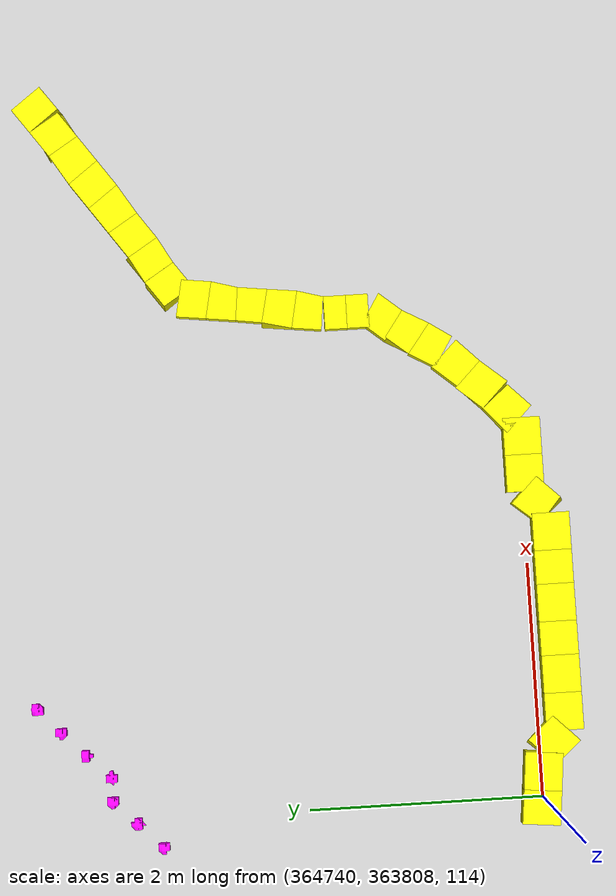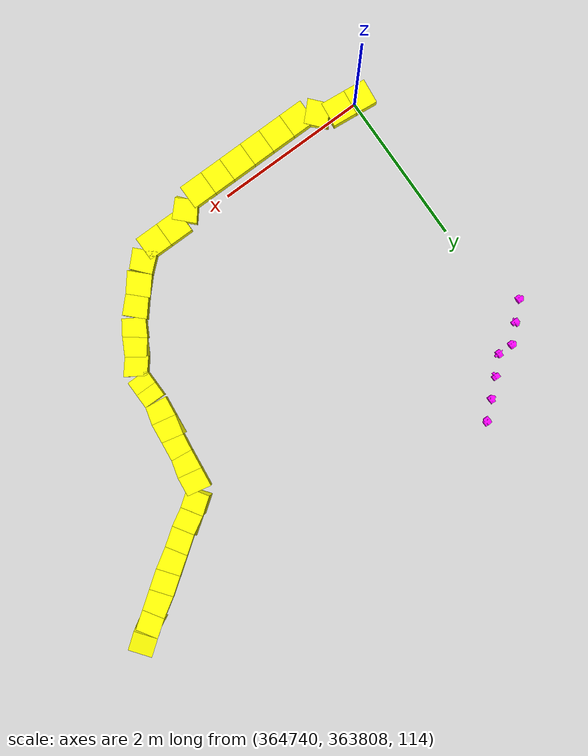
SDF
<sdf version="1.5">
 <world name="default">
  <include><uri>model://sun</uri></include>
  <model name="road_segment_314">
   <static>true</static>
   <pose>364740.0 363808.07999999996 114.42 0 -0.0 -0.09065988721863681</pose>
   <link name="link">
    <collision name="collision">
     <geometry><box><size>0.29454296046036466 0.3 0.12</size></box></geometry>
     <surface><friction><ode><mu>0.02</mu><mu2>0.02</mu2></ode></friction></surface>
    </collision>
    <visual name="visual">
     <geometry><box><size>0.29454296046036466 0.3 0.12</size></box></geometry>
     <material><ambient>1 1 0 1</ambient><diffuse>1 1 0 1</diffuse><emissive>1 1 0 1</emissive></material>
    </visual>
   </link>
  </model>
  <model name="road_segment_315">
   <static>true</static>
   <pose>364740.29333333333 363808.05333333334 114.42000000032742 0 -2.223228096346328e-09 -0.09065988721863681</pose>
   <link name="link">
    <collision name="collision">
     <geometry><box><size>0.29454296046036466 0.3 0.12</size></box></geometry>
     <surface><friction><ode><mu>0.02</mu><mu2>0.02</mu2></ode></friction></surface>
    </collision>
    <visual name="visual">
     <geometry><box><size>0.29454296046036466 0.3 0.12</size></box></geometry>
     <material><ambient>1 1 0 1</ambient><diffuse>1 1 0 1</diffuse><emissive>1 1 0 1</emissive></material>
    </visual>
   </link>
  </model>
  <model name="road_segment_316">
   <static>true</static>
   <pose>364740.54000000004 363807.94 114.41500000080764 0 0.03534061763076632 -0.7853981632519291</pose>
   <link name="link">
    <collision name="collision">
     <geometry><box><size>0.2830194339262208 0.3 0.12</size></box></geometry>
     <surface><friction><ode><mu>0.02</mu><mu2>0.02</mu2></ode></friction></surface>
    </collision>
    <visual name="visual">
     <geometry><box><size>0.2830194339262208 0.3 0.12</size></box></geometry>
     <material><ambient>1 1 0 1</ambient><diffuse>1 1 0 1</diffuse><emissive>1 1 0 1</emissive></material>
    </visual>
   </link>
  </model>
  <model name="road_segment_317">
   <static>true</static>
   <pose>364740.79000000004 363807.84 114.41000000048021 0 3.2014213503649388e-09 0.0</pose>
   <link name="link">
    <collision name="collision">
     <geometry><box><size>0.29999999998835847 0.3 0.12</size></box></geometry>
     <surface><friction><ode><mu>0.02</mu><mu2>0.02</mu2></ode></friction></surface>
    </collision>
    <visual name="visual">
     <geometry><box><size>0.29999999998835847 0.3 0.12</size></box></geometry>
     <material><ambient>1 1 0 1</ambient><diffuse>1 1 0 1</diffuse><emissive>1 1 0 1</emissive></material>
    </visual>
   </link>
  </model>
  <model name="road_segment_318">
   <static>true</static>
   <pose>364741.08999999997 363807.84 114.41 0 -0.0 0.0</pose>
   <link name="link">
    <collision name="collision">
     <geometry><box><size>0.29999999998835847 0.3 0.12</size></box></geometry>
     <surface><friction><ode><mu>0.02</mu><mu2>0.02</mu2></ode></friction></surface>
    </collision>
    <visual name="visual">
     <geometry><box><size>0.29999999998835847 0.3 0.12</size></box></geometry>
     <material><ambient>1 1 0 1</ambient><diffuse>1 1 0 1</diffuse><emissive>1 1 0 1</emissive></material>
    </visual>
   </link>
  </model>
  <model name="road_segment_319">
   <static>true</static>
   <pose>364741.39 363807.84 114.40750000008076 0 0.01666512317303955 0.0</pose>
   <link name="link">
    <collision name="collision">
     <geometry><box><size>0.30004166381741765 0.3 0.12</size></box></geometry>
     <surface><friction><ode><mu>0.02</mu><mu2>0.02</mu2></ode></friction></surface>
    </collision>
    <visual name="visual">
     <geometry><box><size>0.30004166381741765 0.3 0.12</size></box></geometry>
     <material><ambient>1 1 0 1</ambient><diffuse>1 1 0 1</diffuse><emissive>1 1 0 1</emissive></material>
    </visual>
   </link>
  </model>
  <model name="road_segment_320">
   <static>true</static>
   <pose>364741.69000000006 363807.84 114.40250000008076 0 0.016665124252871925 0.0</pose>
   <link name="link">
    <collision name="collision">
     <geometry><box><size>0.30004166376460184 0.3 0.12</size></box></geometry>
     <surface><friction><ode><mu>0.02</mu><mu2>0.02</mu2></ode></friction></surface>
    </collision>
    <visual name="visual">
     <geometry><box><size>0.30004166376460184 0.3 0.12</size></box></geometry>
     <material><ambient>1 1 0 1</ambient><diffuse>1 1 0 1</diffuse><emissive>1 1 0 1</emissive></material>
    </visual>
   </link>
  </model>
  <model name="road_segment_321">
   <static>true</static>
   <pose>364741.99 363807.84 114.4 0 -0.0 0.0</pose>
   <link name="link">
    <collision name="collision">
     <geometry><box><size>0.29999999998835847 0.3 0.12</size></box></geometry>
     <surface><friction><ode><mu>0.02</mu><mu2>0.02</mu2></ode></friction></surface>
    </collision>
    <visual name="visual">
     <geometry><box><size>0.29999999998835847 0.3 0.12</size></box></geometry>
     <material><ambient>1 1 0 1</ambient><diffuse>1 1 0 1</diffuse><emissive>1 1 0 1</emissive></material>
    </visual>
   </link>
  </model>
  <model name="road_segment_322">
   <static>true</static>
   <pose>364742.29000000004 363807.84 114.4 0 -0.0 0.0</pose>
   <link name="link">
    <collision name="collision">
     <geometry><box><size>0.29999999998835847 0.3 0.12</size></box></geometry>
     <surface><friction><ode><mu>0.02</mu><mu2>0.02</mu2></ode></friction></surface>
    </collision>
    <visual name="visual">
     <geometry><box><size>0.29999999998835847 0.3 0.12</size></box></geometry>
     <material><ambient>1 1 0 1</ambient><diffuse>1 1 0 1</diffuse><emissive>1 1 0 1</emissive></material>
    </visual>
   </link>
  </model>
  <model name="road_segment_323">
   <static>true</static>
   <pose>364742.54000000004 363807.94 114.3850000007596 0 0.10567092772011624 0.7853981632519291</pose>
   <link name="link">
    <collision name="collision">
     <geometry><box><size>0.2844292528817624 0.3 0.12</size></box></geometry>
     <surface><friction><ode><mu>0.02</mu><mu2>0.02</mu2></ode></friction></surface>
    </collision>
    <visual name="visual">
     <geometry><box><size>0.2844292528817624 0.3 0.12</size></box></geometry>
     <material><ambient>1 1 0 1</ambient><diffuse>1 1 0 1</diffuse><emissive>1 1 0 1</emissive></material>
    </visual>
   </link>
  </model>
  <model name="road_segment_324">
   <static>true</static>
   <pose>364742.79000000004 363808.04 114.37000000102155 0 3.3178082504869596e-09 0.0</pose>
   <link name="link">
    <collision name="collision">
     <geometry><box><size>0.29999999998835847 0.3 0.12</size></box></geometry>
     <surface><friction><ode><mu>0.02</mu><mu2>0.02</mu2></ode></friction></surface>
    </collision>
    <visual name="visual">
     <geometry><box><size>0.29999999998835847 0.3 0.12</size></box></geometry>
     <material><ambient>1 1 0 1</ambient><diffuse>1 1 0 1</diffuse><emissive>1 1 0 1</emissive></material>
    </visual>
   </link>
  </model>
  <model name="road_segment_325">
   <static>true</static>
   <pose>364743.08999999997 363808.04 114.37000000052387 0 -0.0 0.0</pose>
   <link name="link">
    <collision name="collision">
     <geometry><box><size>0.29999999998835847 0.3 0.12</size></box></geometry>
     <surface><friction><ode><mu>0.02</mu><mu2>0.02</mu2></ode></friction></surface>
    </collision>
    <visual name="visual">
     <geometry><box><size>0.29999999998835847 0.3 0.12</size></box></geometry>
     <material><ambient>1 1 0 1</ambient><diffuse>1 1 0 1</diffuse><emissive>1 1 0 1</emissive></material>
    </visual>
   </link>
  </model>
  <model name="road_segment_326">
   <static>true</static>
   <pose>364743.33999999997 363808.14 114.37000000026194 0 1.8521564285935882e-09 0.7853981633974483</pose>
   <link name="link">
    <collision name="collision">
     <geometry><box><size>0.2828427124910826 0.3 0.12</size></box></geometry>
     <surface><friction><ode><mu>0.02</mu><mu2>0.02</mu2></ode></friction></surface>
    </collision>
    <visual name="visual">
     <geometry><box><size>0.2828427124910826 0.3 0.12</size></box></geometry>
     <material><ambient>1 1 0 1</ambient><diffuse>1 1 0 1</diffuse><emissive>1 1 0 1</emissive></material>
    </visual>
   </link>
  </model>
  <model name="road_segment_327">
   <static>true</static>
   <pose>364743.54000000004 363808.33999999997 114.3600000001688 0 0.07059317809235438 0.7853981633974483</pose>
   <link name="link">
    <collision name="collision">
     <geometry><box><size>0.28354893756776783 0.3 0.12</size></box></geometry>
     <surface><friction><ode><mu>0.02</mu><mu2>0.02</mu2></ode></friction></surface>
    </collision>
    <visual name="visual">
     <geometry><box><size>0.28354893756776783 0.3 0.12</size></box></geometry>
     <material><ambient>1 1 0 1</ambient><diffuse>1 1 0 1</diffuse><emissive>1 1 0 1</emissive></material>
    </visual>
   </link>
  </model>
  <model name="road_segment_328">
   <static>true</static>
   <pose>364743.74 363808.54000000004 114.35000000016879 0 1.1935717262822612e-09 0.7853981633974483</pose>
   <link name="link">
    <collision name="collision">
     <geometry><box><size>0.2828427124910826 0.3 0.12</size></box></geometry>
     <surface><friction><ode><mu>0.02</mu><mu2>0.02</mu2></ode></friction></surface>
    </collision>
    <visual name="visual">
     <geometry><box><size>0.2828427124910826 0.3 0.12</size></box></geometry>
     <material><ambient>1 1 0 1</ambient><diffuse>1 1 0 1</diffuse><emissive>1 1 0 1</emissive></material>
    </visual>
   </link>
  </model>
  <model name="road_segment_329">
   <static>true</static>
   <pose>364743.9066666667 363808.74 114.34999999999998 0 5.91207292447338e-14 0.9827937233816545</pose>
   <link name="link">
    <collision name="collision">
     <geometry><box><size>0.2403700850233988 0.3 0.12</size></box></geometry>
     <surface><friction><ode><mu>0.02</mu><mu2>0.02</mu2></ode></friction></surface>
    </collision>
    <visual name="visual">
     <geometry><box><size>0.2403700850233988 0.3 0.12</size></box></geometry>
     <material><ambient>1 1 0 1</ambient><diffuse>1 1 0 1</diffuse><emissive>1 1 0 1</emissive></material>
    </visual>
   </link>
  </model>
  <model name="road_segment_330">
   <static>true</static>
   <pose>364744.04000000004 363808.94 114.34000000013386 0 0.08301381039290891 0.982793723045841</pose>
   <link name="link">
    <collision name="collision">
     <geometry><box><size>0.24120070015587508 0.3 0.12</size></box></geometry>
     <surface><friction><ode><mu>0.02</mu><mu2>0.02</mu2></ode></friction></surface>
    </collision>
    <visual name="visual">
     <geometry><box><size>0.24120070015587508 0.3 0.12</size></box></geometry>
     <material><ambient>1 1 0 1</ambient><diffuse>1 1 0 1</diffuse><emissive>1 1 0 1</emissive></material>
    </visual>
   </link>
  </model>
  <model name="road_segment_331">
   <static>true</static>
   <pose>364744.17333333334 363809.14 114.33000000013386 0 1.1138936597000295e-09 0.9827937233816545</pose>
   <link name="link">
    <collision name="collision">
     <geometry><box><size>0.2403700850233988 0.3 0.12</size></box></geometry>
     <surface><friction><ode><mu>0.02</mu><mu2>0.02</mu2></ode></friction></surface>
    </collision>
    <visual name="visual">
     <geometry><box><size>0.2403700850233988 0.3 0.12</size></box></geometry>
     <material><ambient>1 1 0 1</ambient><diffuse>1 1 0 1</diffuse><emissive>1 1 0 1</emissive></material>
    </visual>
   </link>
  </model>
  <model name="road_segment_332">
   <static>true</static>
   <pose>364744.24 363809.33999999997 114.33 0 -0.0 1.5707963267948966</pose>
   <link name="link">
    <collision name="collision">
     <geometry><box><size>0.20000000001164153 0.3 0.12</size></box></geometry>
     <surface><friction><ode><mu>0.02</mu><mu2>0.02</mu2></ode></friction></surface>
    </collision>
    <visual name="visual">
     <geometry><box><size>0.20000000001164153 0.3 0.12</size></box></geometry>
     <material><ambient>1 1 0 1</ambient><diffuse>1 1 0 1</diffuse><emissive>1 1 0 1</emissive></material>
    </visual>
   </link>
  </model>
  <model name="road_segment_333">
   <static>true</static>
   <pose>364744.24 363809.54000000004 114.33 0 -0.0 1.5707963267948966</pose>
   <link name="link">
    <collision name="collision">
     <geometry><box><size>0.20000000001164153 0.3 0.12</size></box></geometry>
     <surface><friction><ode><mu>0.02</mu><mu2>0.02</mu2></ode></friction></surface>
    </collision>
    <visual name="visual">
     <geometry><box><size>0.20000000001164153 0.3 0.12</size></box></geometry>
     <material><ambient>1 1 0 1</ambient><diffuse>1 1 0 1</diffuse><emissive>1 1 0 1</emissive></material>
    </visual>
   </link>
  </model>
  <model name="road_segment_334">
   <static>true</static>
   <pose>364744.26 363809.76 114.32900000006752 0 0.008219763684188652 1.4056476494589287</pose>
   <link name="link">
    <collision name="collision">
     <geometry><box><size>0.24331872100870716 0.3 0.12</size></box></geometry>
     <surface><friction><ode><mu>0.02</mu><mu2>0.02</mu2></ode></friction></surface>
    </collision>
    <visual name="visual">
     <geometry><box><size>0.24331872100870716 0.3 0.12</size></box></geometry>
     <material><ambient>1 1 0 1</ambient><diffuse>1 1 0 1</diffuse><emissive>1 1 0 1</emissive></material>
    </visual>
   </link>
  </model>
  <model name="road_segment_335">
   <static>true</static>
   <pose>364744.3 363810.0 114.32400000006753 0 0.032867957119931325 1.4056476492229517</pose>
   <link name="link">
    <collision name="collision">
     <geometry><box><size>0.24344198487662472 0.3 0.12</size></box></geometry>
     <surface><friction><ode><mu>0.02</mu><mu2>0.02</mu2></ode></friction></surface>
    </collision>
    <visual name="visual">
     <geometry><box><size>0.24344198487662472 0.3 0.12</size></box></geometry>
     <material><ambient>1 1 0 1</ambient><diffuse>1 1 0 1</diffuse><emissive>1 1 0 1</emissive></material>
    </visual>
   </link>
  </model>
  <model name="road_segment_336">
   <static>true</static>
   <pose>364744.33999999997 363810.24 114.31999999999998 0 5.84062530873189e-14 1.4056476494982584</pose>
   <link name="link">
    <collision name="collision">
     <geometry><box><size>0.24331050125671302 0.3 0.12</size></box></geometry>
     <surface><friction><ode><mu>0.02</mu><mu2>0.02</mu2></ode></friction></surface>
    </collision>
    <visual name="visual">
     <geometry><box><size>0.24331050125671302 0.3 0.12</size></box></geometry>
     <material><ambient>1 1 0 1</ambient><diffuse>1 1 0 1</diffuse><emissive>1 1 0 1</emissive></material>
    </visual>
   </link>
  </model>
  <model name="road_segment_337">
   <static>true</static>
   <pose>364744.38 363810.48000000004 114.31999999999998 0 -0.0 1.4056476492229517</pose>
   <link name="link">
    <collision name="collision">
     <geometry><box><size>0.24331050120886663 0.3 0.12</size></box></geometry>
     <surface><friction><ode><mu>0.02</mu><mu2>0.02</mu2></ode></friction></surface>
    </collision>
    <visual name="visual">
     <geometry><box><size>0.24331050120886663 0.3 0.12</size></box></geometry>
     <material><ambient>1 1 0 1</ambient><diffuse>1 1 0 1</diffuse><emissive>1 1 0 1</emissive></material>
    </visual>
   </link>
  </model>
  <model name="road_segment_338">
   <static>true</static>
   <pose>364744.42000000004 363810.72000000003 114.31999999999998 0 -5.840625310110144e-14 1.4056476494589287</pose>
   <link name="link">
    <collision name="collision">
     <geometry><box><size>0.24331050119929734 0.3 0.12</size></box></geometry>
     <surface><friction><ode><mu>0.02</mu><mu2>0.02</mu2></ode></friction></surface>
    </collision>
    <visual name="visual">
     <geometry><box><size>0.24331050119929734 0.3 0.12</size></box></geometry>
     <material><ambient>1 1 0 1</ambient><diffuse>1 1 0 1</diffuse><emissive>1 1 0 1</emissive></material>
    </visual>
   </link>
  </model>
  <model name="road_segment_339">
   <static>true</static>
   <pose>364744.5525 363810.91500000004 114.30499999972206 0 0.11048823442512462 0.5880026034878674</pose>
   <link name="link">
    <collision name="collision">
     <geometry><box><size>0.2720753572310408 0.3 0.12</size></box></geometry>
     <surface><friction><ode><mu>0.02</mu><mu2>0.02</mu2></ode></friction></surface>
    </collision>
    <visual name="visual">
     <geometry><box><size>0.2720753572310408 0.3 0.12</size></box></geometry>
     <material><ambient>1 1 0 1</ambient><diffuse>1 1 0 1</diffuse><emissive>1 1 0 1</emissive></material>
    </visual>
   </link>
  </model>
  <model name="road_segment_340">
   <static>true</static>
   <pose>364744.77749999997 363811.065 114.29499999972205 0 -0.03696317196068532 0.5880026035475675</pose>
   <link name="link">
    <collision name="collision">
     <geometry><box><size>0.27060118261718447 0.3 0.12</size></box></geometry>
     <surface><friction><ode><mu>0.02</mu><mu2>0.02</mu2></ode></friction></surface>
    </collision>
    <visual name="visual">
     <geometry><box><size>0.27060118261718447 0.3 0.12</size></box></geometry>
     <material><ambient>1 1 0 1</ambient><diffuse>1 1 0 1</diffuse><emissive>1 1 0 1</emissive></material>
    </visual>
   </link>
  </model>
  <model name="road_segment_341">
   <static>true</static>
   <pose>364745.0025 363811.215 114.3 0 -0.0 0.5880026036669679</pose>
   <link name="link">
    <collision name="collision">
     <geometry><box><size>0.27041634565334166 0.3 0.12</size></box></geometry>
     <surface><friction><ode><mu>0.02</mu><mu2>0.02</mu2></ode></friction></surface>
    </collision>
    <visual name="visual">
     <geometry><box><size>0.27041634565334166 0.3 0.12</size></box></geometry>
     <material><ambient>1 1 0 1</ambient><diffuse>1 1 0 1</diffuse><emissive>1 1 0 1</emissive></material>
    </visual>
   </link>
  </model>
  <model name="road_segment_342">
   <static>true</static>
   <pose>364745.2275 363811.365 114.3 0 -0.0 0.5880026034878674</pose>
   <link name="link">
    <collision name="collision">
     <geometry><box><size>0.2704163456210538 0.3 0.12</size></box></geometry>
     <surface><friction><ode><mu>0.02</mu><mu2>0.02</mu2></ode></friction></surface>
    </collision>
    <visual name="visual">
     <geometry><box><size>0.2704163456210538 0.3 0.12</size></box></geometry>
     <material><ambient>1 1 0 1</ambient><diffuse>1 1 0 1</diffuse><emissive>1 1 0 1</emissive></material>
    </visual>
   </link>
  </model>
  <model name="road_segment_343">
   <static>true</static>
   <pose>364745.4525 363811.515 114.3 0 -0.0 0.5880026033684671</pose>
   <link name="link">
    <collision name="collision">
     <geometry><box><size>0.2704163456694855 0.3 0.12</size></box></geometry>
     <surface><friction><ode><mu>0.02</mu><mu2>0.02</mu2></ode></friction></surface>
    </collision>
    <visual name="visual">
     <geometry><box><size>0.2704163456694855 0.3 0.12</size></box></geometry>
     <material><ambient>1 1 0 1</ambient><diffuse>1 1 0 1</diffuse><emissive>1 1 0 1</emissive></material>
    </visual>
   </link>
  </model>
  <model name="road_segment_344">
   <static>true</static>
   <pose>364745.6775 363811.665 114.3 0 -0.0 0.5880026036669679</pose>
   <link name="link">
    <collision name="collision">
     <geometry><box><size>0.27041634565334166 0.3 0.12</size></box></geometry>
     <surface><friction><ode><mu>0.02</mu><mu2>0.02</mu2></ode></friction></surface>
    </collision>
    <visual name="visual">
     <geometry><box><size>0.27041634565334166 0.3 0.12</size></box></geometry>
     <material><ambient>1 1 0 1</ambient><diffuse>1 1 0 1</diffuse><emissive>1 1 0 1</emissive></material>
    </visual>
   </link>
  </model>
  <model name="road_segment_345">
   <static>true</static>
   <pose>364745.90249999997 363811.815 114.28875000063191 0 0.08301380683677761 0.5880026035475675</pose>
   <link name="link">
    <collision name="collision">
     <geometry><box><size>0.2713507876639187 0.3 0.12</size></box></geometry>
     <surface><friction><ode><mu>0.02</mu><mu2>0.02</mu2></ode></friction></surface>
    </collision>
    <visual name="visual">
     <geometry><box><size>0.2713507876639187 0.3 0.12</size></box></geometry>
     <material><ambient>1 1 0 1</ambient><diffuse>1 1 0 1</diffuse><emissive>1 1 0 1</emissive></material>
    </visual>
   </link>
  </model>
  <model name="road_segment_346">
   <static>true</static>
   <pose>364746.1275 363811.96499999997 114.24375000127365 0 0.24461636046110113 0.5880026034878674</pose>
   <link name="link">
    <collision name="collision">
     <geometry><box><size>0.2787135625985779 0.3 0.12</size></box></geometry>
     <surface><friction><ode><mu>0.2</mu><mu2>0.2</mu2></ode></friction></surface>
    </collision>
    <visual name="visual">
     <geometry><box><size>0.2787135625985779 0.3 0.12</size></box></geometry>
     <material><ambient>1 1 0 1</ambient><diffuse>1 1 0 1</diffuse><emissive>1 1 0 1</emissive></material>
    </visual>
   </link>
  </model>
  <model name="straight_marker_209">
   <static>true</static>
   <pose>364739.84 363811.24 114.33999999999999 0 0 0</pose>
   <link name="link">
    <visual name="visual">
     <geometry><sphere><radius>0.05</radius></sphere></geometry>
     <material><ambient>1 0 1 1</ambient><diffuse>1 0 1 1</diffuse><emissive>1 0 1 1</emissive></material>
    </visual>
   </link>
  </model>
  <model name="straight_marker_210">
   <static>true</static>
   <pose>364740.04 363811.44 114.33999999999999 0 0 0</pose>
   <link name="link">
    <visual name="visual">
     <geometry><sphere><radius>0.05</radius></sphere></geometry>
     <material><ambient>1 0 1 1</ambient><diffuse>1 0 1 1</diffuse><emissive>1 0 1 1</emissive></material>
    </visual>
   </link>
  </model>
  <model name="straight_marker_211">
   <static>true</static>
   <pose>364740.24 363811.64 114.33999999999999 0 0 0</pose>
   <link name="link">
    <visual name="visual">
     <geometry><sphere><radius>0.05</radius></sphere></geometry>
     <material><ambient>1 0 1 1</ambient><diffuse>1 0 1 1</diffuse><emissive>1 0 1 1</emissive></material>
    </visual>
   </link>
  </model>
  <model name="straight_marker_212">
   <static>true</static>
   <pose>364740.44 363811.64 114.33999999999999 0 0 0</pose>
   <link name="link">
    <visual name="visual">
     <geometry><sphere><radius>0.05</radius></sphere></geometry>
     <material><ambient>1 0 1 1</ambient><diffuse>1 0 1 1</diffuse><emissive>1 0 1 1</emissive></material>
    </visual>
   </link>
  </model>
  <model name="straight_marker_213">
   <static>true</static>
   <pose>364740.64 363811.84 114.36999999951978 0 0 0</pose>
   <link name="link">
    <visual name="visual">
     <geometry><sphere><radius>0.05</radius></sphere></geometry>
     <material><ambient>1 0 1 1</ambient><diffuse>1 0 1 1</diffuse><emissive>1 0 1 1</emissive></material>
    </visual>
   </link>
  </model>
  <model name="straight_marker_214">
   <static>true</static>
   <pose>364740.84 363812.04 114.31000000085564 0 0 0</pose>
   <link name="link">
    <visual name="visual">
     <geometry><sphere><radius>0.05</radius></sphere></geometry>
     <material><ambient>1 0 1 1</ambient><diffuse>1 0 1 1</diffuse><emissive>1 0 1 1</emissive></material>
    </visual>
   </link>
  </model>
  <model name="straight_marker_215">
   <static>true</static>
   <pose>364741.04 363812.24 114.30999999999999 0 0 0</pose>
   <link name="link">
    <visual name="visual">
     <geometry><sphere><radius>0.05</radius></sphere></geometry>
     <material><ambient>1 0 1 1</ambient><diffuse>1 0 1 1</diffuse><emissive>1 0 1 1</emissive></material>
    </visual>
   </link>
  </model>
 </world>
</sdf>
